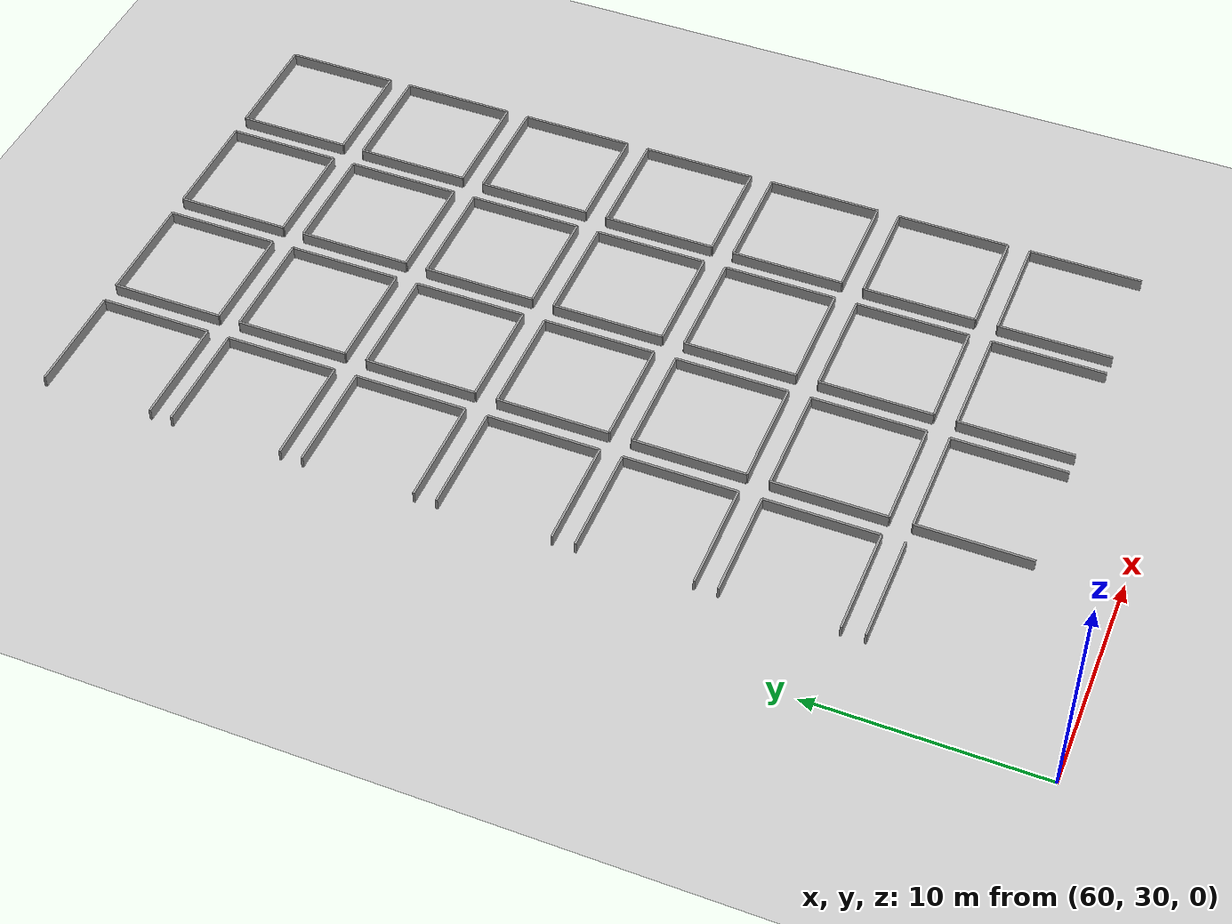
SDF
<sdf version="1.7">
 <world name="default">
  <include><uri>model://sun</uri></include>
  <model name="ground_plane">
   <static>true</static>
   <link name="link">
    <collision name="collision">
     <geometry><plane><normal>0 0 1</normal><size>100 100</size></plane></geometry>
    </collision>
    <visual name="visual">
     <geometry><plane><normal>0 0 1</normal><size>100 100</size></plane></geometry>
     <material>
      <script><uri>file://media/materials/scripts/gazebo.material</uri><name>Gazebo/Grey</name></script>
     </material>
    </visual>
   </link>
  </model>
  <model name="wall_101_north">
   <static>true</static>
   <pose>66 38.5 0 0 0 0</pose>
   <link name="link">
    <collision name="collision"><geometry><box><size>5 0.1 1</size></box></geometry></collision>
    <visual name="visual">
     <geometry><box><size>5 0.1 1</size></box></geometry>
     <material>
      <script><uri>file://media/materials/scripts/gazebo.material</uri><name>Gazebo/Grey</name></script>
     </material>
    </visual>
   </link>
  </model>
  <model name="wall_102_north">
   <static>true</static>
   <pose>72 38.5 0 0 0 0</pose>
   <link name="link">
    <collision name="collision"><geometry><box><size>5 0.1 1</size></box></geometry></collision>
    <visual name="visual">
     <geometry><box><size>5 0.1 1</size></box></geometry>
     <material>
      <script><uri>file://media/materials/scripts/gazebo.material</uri><name>Gazebo/Grey</name></script>
     </material>
    </visual>
   </link>
  </model>
  <model name="wall_102_east">
   <static>true</static>
   <pose>74.5 36 0 0 0 1.5707</pose>
   <link name="link">
    <collision name="collision"><geometry><box><size>5 0.1 1</size></box></geometry></collision>
    <visual name="visual">
     <geometry><box><size>5 0.1 1</size></box></geometry>
     <material>
      <script><uri>file://media/materials/scripts/gazebo.material</uri><name>Gazebo/Grey</name></script>
     </material>
    </visual>
   </link>
  </model>
  <model name="wall_102_west">
   <static>true</static>
   <pose>69.5 36 0 0 0 1.5707</pose>
   <link name="link">
    <collision name="collision"><geometry><box><size>5 0.1 1</size></box></geometry></collision>
    <visual name="visual">
     <geometry><box><size>5 0.1 1</size></box></geometry>
     <material>
      <script><uri>file://media/materials/scripts/gazebo.material</uri><name>Gazebo/Grey</name></script>
     </material>
    </visual>
   </link>
  </model>
  <model name="wall_103_north">
   <static>true</static>
   <pose>78 38.5 0 0 0 0</pose>
   <link name="link">
    <collision name="collision"><geometry><box><size>5 0.1 1</size></box></geometry></collision>
    <visual name="visual">
     <geometry><box><size>5 0.1 1</size></box></geometry>
     <material>
      <script><uri>file://media/materials/scripts/gazebo.material</uri><name>Gazebo/Grey</name></script>
     </material>
    </visual>
   </link>
  </model>
  <model name="wall_103_east">
   <static>true</static>
   <pose>80.5 36 0 0 0 1.5707</pose>
   <link name="link">
    <collision name="collision"><geometry><box><size>5 0.1 1</size></box></geometry></collision>
    <visual name="visual">
     <geometry><box><size>5 0.1 1</size></box></geometry>
     <material>
      <script><uri>file://media/materials/scripts/gazebo.material</uri><name>Gazebo/Grey</name></script>
     </material>
    </visual>
   </link>
  </model>
  <model name="wall_103_west">
   <static>true</static>
   <pose>75.5 36 0 0 0 1.5707</pose>
   <link name="link">
    <collision name="collision"><geometry><box><size>5 0.1 1</size></box></geometry></collision>
    <visual name="visual">
     <geometry><box><size>5 0.1 1</size></box></geometry>
     <material>
      <script><uri>file://media/materials/scripts/gazebo.material</uri><name>Gazebo/Grey</name></script>
     </material>
    </visual>
   </link>
  </model>
  <model name="wall_104_north">
   <static>true</static>
   <pose>84 38.5 0 0 0 0</pose>
   <link name="link">
    <collision name="collision"><geometry><box><size>5 0.1 1</size></box></geometry></collision>
    <visual name="visual">
     <geometry><box><size>5 0.1 1</size></box></geometry>
     <material>
      <script><uri>file://media/materials/scripts/gazebo.material</uri><name>Gazebo/Grey</name></script>
     </material>
    </visual>
   </link>
  </model>
  <model name="wall_104_east">
   <static>true</static>
   <pose>86.5 36 0 0 0 1.5707</pose>
   <link name="link">
    <collision name="collision"><geometry><box><size>5 0.1 1</size></box></geometry></collision>
    <visual name="visual">
     <geometry><box><size>5 0.1 1</size></box></geometry>
     <material>
      <script><uri>file://media/materials/scripts/gazebo.material</uri><name>Gazebo/Grey</name></script>
     </material>
    </visual>
   </link>
  </model>
  <model name="wall_104_west">
   <static>true</static>
   <pose>81.5 36 0 0 0 1.5707</pose>
   <link name="link">
    <collision name="collision"><geometry><box><size>5 0.1 1</size></box></geometry></collision>
    <visual name="visual">
     <geometry><box><size>5 0.1 1</size></box></geometry>
     <material>
      <script><uri>file://media/materials/scripts/gazebo.material</uri><name>Gazebo/Grey</name></script>
     </material>
    </visual>
   </link>
  </model>
  <model name="wall_116_north">
   <static>true</static>
   <pose>66 44.5 0 0 0 0</pose>
   <link name="link">
    <collision name="collision"><geometry><box><size>5 0.1 1</size></box></geometry></collision>
    <visual name="visual">
     <geometry><box><size>5 0.1 1</size></box></geometry>
     <material>
      <script><uri>file://media/materials/scripts/gazebo.material</uri><name>Gazebo/Grey</name></script>
     </material>
    </visual>
   </link>
  </model>
  <model name="wall_116_south">
   <static>true</static>
   <pose>66 39.5 0 0 0 0</pose>
   <link name="link">
    <collision name="collision"><geometry><box><size>5 0.1 1</size></box></geometry></collision>
    <visual name="visual">
     <geometry><box><size>5 0.1 1</size></box></geometry>
     <material>
      <script><uri>file://media/materials/scripts/gazebo.material</uri><name>Gazebo/Grey</name></script>
     </material>
    </visual>
   </link>
  </model>
  <model name="wall_116_east">
   <static>true</static>
   <pose>68.5 42 0 0 0 1.5707</pose>
   <link name="link">
    <collision name="collision"><geometry><box><size>5 0.1 1</size></box></geometry></collision>
    <visual name="visual">
     <geometry><box><size>5 0.1 1</size></box></geometry>
     <material>
      <script><uri>file://media/materials/scripts/gazebo.material</uri><name>Gazebo/Grey</name></script>
     </material>
    </visual>
   </link>
  </model>
  <model name="wall_117_north">
   <static>true</static>
   <pose>72 44.5 0 0 0 0</pose>
   <link name="link">
    <collision name="collision"><geometry><box><size>5 0.1 1</size></box></geometry></collision>
    <visual name="visual">
     <geometry><box><size>5 0.1 1</size></box></geometry>
     <material>
      <script><uri>file://media/materials/scripts/gazebo.material</uri><name>Gazebo/Grey</name></script>
     </material>
    </visual>
   </link>
  </model>
  <model name="wall_117_south">
   <static>true</static>
   <pose>72 39.5 0 0 0 0</pose>
   <link name="link">
    <collision name="collision"><geometry><box><size>5 0.1 1</size></box></geometry></collision>
    <visual name="visual">
     <geometry><box><size>5 0.1 1</size></box></geometry>
     <material>
      <script><uri>file://media/materials/scripts/gazebo.material</uri><name>Gazebo/Grey</name></script>
     </material>
    </visual>
   </link>
  </model>
  <model name="wall_117_east">
   <static>true</static>
   <pose>74.5 42 0 0 0 1.5707</pose>
   <link name="link">
    <collision name="collision"><geometry><box><size>5 0.1 1</size></box></geometry></collision>
    <visual name="visual">
     <geometry><box><size>5 0.1 1</size></box></geometry>
     <material>
      <script><uri>file://media/materials/scripts/gazebo.material</uri><name>Gazebo/Grey</name></script>
     </material>
    </visual>
   </link>
  </model>
  <model name="wall_117_west">
   <static>true</static>
   <pose>69.5 42 0 0 0 1.5707</pose>
   <link name="link">
    <collision name="collision"><geometry><box><size>5 0.1 1</size></box></geometry></collision>
    <visual name="visual">
     <geometry><box><size>5 0.1 1</size></box></geometry>
     <material>
      <script><uri>file://media/materials/scripts/gazebo.material</uri><name>Gazebo/Grey</name></script>
     </material>
    </visual>
   </link>
  </model>
  <model name="wall_118_north">
   <static>true</static>
   <pose>78 44.5 0 0 0 0</pose>
   <link name="link">
    <collision name="collision"><geometry><box><size>5 0.1 1</size></box></geometry></collision>
    <visual name="visual">
     <geometry><box><size>5 0.1 1</size></box></geometry>
     <material>
      <script><uri>file://media/materials/scripts/gazebo.material</uri><name>Gazebo/Grey</name></script>
     </material>
    </visual>
   </link>
  </model>
  <model name="wall_118_south">
   <static>true</static>
   <pose>78 39.5 0 0 0 0</pose>
   <link name="link">
    <collision name="collision"><geometry><box><size>5 0.1 1</size></box></geometry></collision>
    <visual name="visual">
     <geometry><box><size>5 0.1 1</size></box></geometry>
     <material>
      <script><uri>file://media/materials/scripts/gazebo.material</uri><name>Gazebo/Grey</name></script>
     </material>
    </visual>
   </link>
  </model>
  <model name="wall_118_east">
   <static>true</static>
   <pose>80.5 42 0 0 0 1.5707</pose>
   <link name="link">
    <collision name="collision"><geometry><box><size>5 0.1 1</size></box></geometry></collision>
    <visual name="visual">
     <geometry><box><size>5 0.1 1</size></box></geometry>
     <material>
      <script><uri>file://media/materials/scripts/gazebo.material</uri><name>Gazebo/Grey</name></script>
     </material>
    </visual>
   </link>
  </model>
  <model name="wall_118_west">
   <static>true</static>
   <pose>75.5 42 0 0 0 1.5707</pose>
   <link name="link">
    <collision name="collision"><geometry><box><size>5 0.1 1</size></box></geometry></collision>
    <visual name="visual">
     <geometry><box><size>5 0.1 1</size></box></geometry>
     <material>
      <script><uri>file://media/materials/scripts/gazebo.material</uri><name>Gazebo/Grey</name></script>
     </material>
    </visual>
   </link>
  </model>
  <model name="wall_119_north">
   <static>true</static>
   <pose>84 44.5 0 0 0 0</pose>
   <link name="link">
    <collision name="collision"><geometry><box><size>5 0.1 1</size></box></geometry></collision>
    <visual name="visual">
     <geometry><box><size>5 0.1 1</size></box></geometry>
     <material>
      <script><uri>file://media/materials/scripts/gazebo.material</uri><name>Gazebo/Grey</name></script>
     </material>
    </visual>
   </link>
  </model>
  <model name="wall_119_south">
   <static>true</static>
   <pose>84 39.5 0 0 0 0</pose>
   <link name="link">
    <collision name="collision"><geometry><box><size>5 0.1 1</size></box></geometry></collision>
    <visual name="visual">
     <geometry><box><size>5 0.1 1</size></box></geometry>
     <material>
      <script><uri>file://media/materials/scripts/gazebo.material</uri><name>Gazebo/Grey</name></script>
     </material>
    </visual>
   </link>
  </model>
  <model name="wall_119_east">
   <static>true</static>
   <pose>86.5 42 0 0 0 1.5707</pose>
   <link name="link">
    <collision name="collision"><geometry><box><size>5 0.1 1</size></box></geometry></collision>
    <visual name="visual">
     <geometry><box><size>5 0.1 1</size></box></geometry>
     <material>
      <script><uri>file://media/materials/scripts/gazebo.material</uri><name>Gazebo/Grey</name></script>
     </material>
    </visual>
   </link>
  </model>
  <model name="wall_119_west">
   <static>true</static>
   <pose>81.5 42 0 0 0 1.5707</pose>
   <link name="link">
    <collision name="collision"><geometry><box><size>5 0.1 1</size></box></geometry></collision>
    <visual name="visual">
     <geometry><box><size>5 0.1 1</size></box></geometry>
     <material>
      <script><uri>file://media/materials/scripts/gazebo.material</uri><name>Gazebo/Grey</name></script>
     </material>
    </visual>
   </link>
  </model>
  <model name="wall_131_north">
   <static>true</static>
   <pose>66 50.5 0 0 0 0</pose>
   <link name="link">
    <collision name="collision"><geometry><box><size>5 0.1 1</size></box></geometry></collision>
    <visual name="visual">
     <geometry><box><size>5 0.1 1</size></box></geometry>
     <material>
      <script><uri>file://media/materials/scripts/gazebo.material</uri><name>Gazebo/Grey</name></script>
     </material>
    </visual>
   </link>
  </model>
  <model name="wall_131_south">
   <static>true</static>
   <pose>66 45.5 0 0 0 0</pose>
   <link name="link">
    <collision name="collision"><geometry><box><size>5 0.1 1</size></box></geometry></collision>
    <visual name="visual">
     <geometry><box><size>5 0.1 1</size></box></geometry>
     <material>
      <script><uri>file://media/materials/scripts/gazebo.material</uri><name>Gazebo/Grey</name></script>
     </material>
    </visual>
   </link>
  </model>
  <model name="wall_131_east">
   <static>true</static>
   <pose>68.5 48 0 0 0 1.5707</pose>
   <link name="link">
    <collision name="collision"><geometry><box><size>5 0.1 1</size></box></geometry></collision>
    <visual name="visual">
     <geometry><box><size>5 0.1 1</size></box></geometry>
     <material>
      <script><uri>file://media/materials/scripts/gazebo.material</uri><name>Gazebo/Grey</name></script>
     </material>
    </visual>
   </link>
  </model>
  <model name="wall_132_north">
   <static>true</static>
   <pose>72 50.5 0 0 0 0</pose>
   <link name="link">
    <collision name="collision"><geometry><box><size>5 0.1 1</size></box></geometry></collision>
    <visual name="visual">
     <geometry><box><size>5 0.1 1</size></box></geometry>
     <material>
      <script><uri>file://media/materials/scripts/gazebo.material</uri><name>Gazebo/Grey</name></script>
     </material>
    </visual>
   </link>
  </model>
  <model name="wall_132_south">
   <static>true</static>
   <pose>72 45.5 0 0 0 0</pose>
   <link name="link">
    <collision name="collision"><geometry><box><size>5 0.1 1</size></box></geometry></collision>
    <visual name="visual">
     <geometry><box><size>5 0.1 1</size></box></geometry>
     <material>
      <script><uri>file://media/materials/scripts/gazebo.material</uri><name>Gazebo/Grey</name></script>
     </material>
    </visual>
   </link>
  </model>
  <model name="wall_132_east">
   <static>true</static>
   <pose>74.5 48 0 0 0 1.5707</pose>
   <link name="link">
    <collision name="collision"><geometry><box><size>5 0.1 1</size></box></geometry></collision>
    <visual name="visual">
     <geometry><box><size>5 0.1 1</size></box></geometry>
     <material>
      <script><uri>file://media/materials/scripts/gazebo.material</uri><name>Gazebo/Grey</name></script>
     </material>
    </visual>
   </link>
  </model>
  <model name="wall_132_west">
   <static>true</static>
   <pose>69.5 48 0 0 0 1.5707</pose>
   <link name="link">
    <collision name="collision"><geometry><box><size>5 0.1 1</size></box></geometry></collision>
    <visual name="visual">
     <geometry><box><size>5 0.1 1</size></box></geometry>
     <material>
      <script><uri>file://media/materials/scripts/gazebo.material</uri><name>Gazebo/Grey</name></script>
     </material>
    </visual>
   </link>
  </model>
  <model name="wall_133_north">
   <static>true</static>
   <pose>78 50.5 0 0 0 0</pose>
   <link name="link">
    <collision name="collision"><geometry><box><size>5 0.1 1</size></box></geometry></collision>
    <visual name="visual">
     <geometry><box><size>5 0.1 1</size></box></geometry>
     <material>
      <script><uri>file://media/materials/scripts/gazebo.material</uri><name>Gazebo/Grey</name></script>
     </material>
    </visual>
   </link>
  </model>
  <model name="wall_133_south">
   <static>true</static>
   <pose>78 45.5 0 0 0 0</pose>
   <link name="link">
    <collision name="collision"><geometry><box><size>5 0.1 1</size></box></geometry></collision>
    <visual name="visual">
     <geometry><box><size>5 0.1 1</size></box></geometry>
     <material>
      <script><uri>file://media/materials/scripts/gazebo.material</uri><name>Gazebo/Grey</name></script>
     </material>
    </visual>
   </link>
  </model>
  <model name="wall_133_east">
   <static>true</static>
   <pose>80.5 48 0 0 0 1.5707</pose>
   <link name="link">
    <collision name="collision"><geometry><box><size>5 0.1 1</size></box></geometry></collision>
    <visual name="visual">
     <geometry><box><size>5 0.1 1</size></box></geometry>
     <material>
      <script><uri>file://media/materials/scripts/gazebo.material</uri><name>Gazebo/Grey</name></script>
     </material>
    </visual>
   </link>
  </model>
  <model name="wall_133_west">
   <static>true</static>
   <pose>75.5 48 0 0 0 1.5707</pose>
   <link name="link">
    <collision name="collision"><geometry><box><size>5 0.1 1</size></box></geometry></collision>
    <visual name="visual">
     <geometry><box><size>5 0.1 1</size></box></geometry>
     <material>
      <script><uri>file://media/materials/scripts/gazebo.material</uri><name>Gazebo/Grey</name></script>
     </material>
    </visual>
   </link>
  </model>
  <model name="wall_134_north">
   <static>true</static>
   <pose>84 50.5 0 0 0 0</pose>
   <link name="link">
    <collision name="collision"><geometry><box><size>5 0.1 1</size></box></geometry></collision>
    <visual name="visual">
     <geometry><box><size>5 0.1 1</size></box></geometry>
     <material>
      <script><uri>file://media/materials/scripts/gazebo.material</uri><name>Gazebo/Grey</name></script>
     </material>
    </visual>
   </link>
  </model>
  <model name="wall_134_south">
   <static>true</static>
   <pose>84 45.5 0 0 0 0</pose>
   <link name="link">
    <collision name="collision"><geometry><box><size>5 0.1 1</size></box></geometry></collision>
    <visual name="visual">
     <geometry><box><size>5 0.1 1</size></box></geometry>
     <material>
      <script><uri>file://media/materials/scripts/gazebo.material</uri><name>Gazebo/Grey</name></script>
     </material>
    </visual>
   </link>
  </model>
  <model name="wall_134_east">
   <static>true</static>
   <pose>86.5 48 0 0 0 1.5707</pose>
   <link name="link">
    <collision name="collision"><geometry><box><size>5 0.1 1</size></box></geometry></collision>
    <visual name="visual">
     <geometry><box><size>5 0.1 1</size></box></geometry>
     <material>
      <script><uri>file://media/materials/scripts/gazebo.material</uri><name>Gazebo/Grey</name></script>
     </material>
    </visual>
   </link>
  </model>
  <model name="wall_134_west">
   <static>true</static>
   <pose>81.5 48 0 0 0 1.5707</pose>
   <link name="link">
    <collision name="collision"><geometry><box><size>5 0.1 1</size></box></geometry></collision>
    <visual name="visual">
     <geometry><box><size>5 0.1 1</size></box></geometry>
     <material>
      <script><uri>file://media/materials/scripts/gazebo.material</uri><name>Gazebo/Grey</name></script>
     </material>
    </visual>
   </link>
  </model>
  <model name="wall_146_north">
   <static>true</static>
   <pose>66 56.5 0 0 0 0</pose>
   <link name="link">
    <collision name="collision"><geometry><box><size>5 0.1 1</size></box></geometry></collision>
    <visual name="visual">
     <geometry><box><size>5 0.1 1</size></box></geometry>
     <material>
      <script><uri>file://media/materials/scripts/gazebo.material</uri><name>Gazebo/Grey</name></script>
     </material>
    </visual>
   </link>
  </model>
  <model name="wall_146_south">
   <static>true</static>
   <pose>66 51.5 0 0 0 0</pose>
   <link name="link">
    <collision name="collision"><geometry><box><size>5 0.1 1</size></box></geometry></collision>
    <visual name="visual">
     <geometry><box><size>5 0.1 1</size></box></geometry>
     <material>
      <script><uri>file://media/materials/scripts/gazebo.material</uri><name>Gazebo/Grey</name></script>
     </material>
    </visual>
   </link>
  </model>
  <model name="wall_146_east">
   <static>true</static>
   <pose>68.5 54 0 0 0 1.5707</pose>
   <link name="link">
    <collision name="collision"><geometry><box><size>5 0.1 1</size></box></geometry></collision>
    <visual name="visual">
     <geometry><box><size>5 0.1 1</size></box></geometry>
     <material>
      <script><uri>file://media/materials/scripts/gazebo.material</uri><name>Gazebo/Grey</name></script>
     </material>
    </visual>
   </link>
  </model>
  <model name="wall_147_north">
   <static>true</static>
   <pose>72 56.5 0 0 0 0</pose>
   <link name="link">
    <collision name="collision"><geometry><box><size>5 0.1 1</size></box></geometry></collision>
    <visual name="visual">
     <geometry><box><size>5 0.1 1</size></box></geometry>
     <material>
      <script><uri>file://media/materials/scripts/gazebo.material</uri><name>Gazebo/Grey</name></script>
     </material>
    </visual>
   </link>
  </model>
  <model name="wall_147_south">
   <static>true</static>
   <pose>72 51.5 0 0 0 0</pose>
   <link name="link">
    <collision name="collision"><geometry><box><size>5 0.1 1</size></box></geometry></collision>
    <visual name="visual">
     <geometry><box><size>5 0.1 1</size></box></geometry>
     <material>
      <script><uri>file://media/materials/scripts/gazebo.material</uri><name>Gazebo/Grey</name></script>
     </material>
    </visual>
   </link>
  </model>
  <model name="wall_147_east">
   <static>true</static>
   <pose>74.5 54 0 0 0 1.5707</pose>
   <link name="link">
    <collision name="collision"><geometry><box><size>5 0.1 1</size></box></geometry></collision>
    <visual name="visual">
     <geometry><box><size>5 0.1 1</size></box></geometry>
     <material>
      <script><uri>file://media/materials/scripts/gazebo.material</uri><name>Gazebo/Grey</name></script>
     </material>
    </visual>
   </link>
  </model>
  <model name="wall_147_west">
   <static>true</static>
   <pose>69.5 54 0 0 0 1.5707</pose>
   <link name="link">
    <collision name="collision"><geometry><box><size>5 0.1 1</size></box></geometry></collision>
    <visual name="visual">
     <geometry><box><size>5 0.1 1</size></box></geometry>
     <material>
      <script><uri>file://media/materials/scripts/gazebo.material</uri><name>Gazebo/Grey</name></script>
     </material>
    </visual>
   </link>
  </model>
  <model name="wall_148_north">
   <static>true</static>
   <pose>78 56.5 0 0 0 0</pose>
   <link name="link">
    <collision name="collision"><geometry><box><size>5 0.1 1</size></box></geometry></collision>
    <visual name="visual">
     <geometry><box><size>5 0.1 1</size></box></geometry>
     <material>
      <script><uri>file://media/materials/scripts/gazebo.material</uri><name>Gazebo/Grey</name></script>
     </material>
    </visual>
   </link>
  </model>
  <model name="wall_148_south">
   <static>true</static>
   <pose>78 51.5 0 0 0 0</pose>
   <link name="link">
    <collision name="collision"><geometry><box><size>5 0.1 1</size></box></geometry></collision>
    <visual name="visual">
     <geometry><box><size>5 0.1 1</size></box></geometry>
     <material>
      <script><uri>file://media/materials/scripts/gazebo.material</uri><name>Gazebo/Grey</name></script>
     </material>
    </visual>
   </link>
  </model>
  <model name="wall_148_east">
   <static>true</static>
   <pose>80.5 54 0 0 0 1.5707</pose>
   <link name="link">
    <collision name="collision"><geometry><box><size>5 0.1 1</size></box></geometry></collision>
    <visual name="visual">
     <geometry><box><size>5 0.1 1</size></box></geometry>
     <material>
      <script><uri>file://media/materials/scripts/gazebo.material</uri><name>Gazebo/Grey</name></script>
     </material>
    </visual>
   </link>
  </model>
  <model name="wall_148_west">
   <static>true</static>
   <pose>75.5 54 0 0 0 1.5707</pose>
   <link name="link">
    <collision name="collision"><geometry><box><size>5 0.1 1</size></box></geometry></collision>
    <visual name="visual">
     <geometry><box><size>5 0.1 1</size></box></geometry>
     <material>
      <script><uri>file://media/materials/scripts/gazebo.material</uri><name>Gazebo/Grey</name></script>
     </material>
    </visual>
   </link>
  </model>
  <model name="wall_149_north">
   <static>true</static>
   <pose>84 56.5 0 0 0 0</pose>
   <link name="link">
    <collision name="collision"><geometry><box><size>5 0.1 1</size></box></geometry></collision>
    <visual name="visual">
     <geometry><box><size>5 0.1 1</size></box></geometry>
     <material>
      <script><uri>file://media/materials/scripts/gazebo.material</uri><name>Gazebo/Grey</name></script>
     </material>
    </visual>
   </link>
  </model>
  <model name="wall_149_south">
   <static>true</static>
   <pose>84 51.5 0 0 0 0</pose>
   <link name="link">
    <collision name="collision"><geometry><box><size>5 0.1 1</size></box></geometry></collision>
    <visual name="visual">
     <geometry><box><size>5 0.1 1</size></box></geometry>
     <material>
      <script><uri>file://media/materials/scripts/gazebo.material</uri><name>Gazebo/Grey</name></script>
     </material>
    </visual>
   </link>
  </model>
  <model name="wall_149_east">
   <static>true</static>
   <pose>86.5 54 0 0 0 1.5707</pose>
   <link name="link">
    <collision name="collision"><geometry><box><size>5 0.1 1</size></box></geometry></collision>
    <visual name="visual">
     <geometry><box><size>5 0.1 1</size></box></geometry>
     <material>
      <script><uri>file://media/materials/scripts/gazebo.material</uri><name>Gazebo/Grey</name></script>
     </material>
    </visual>
   </link>
  </model>
  <model name="wall_149_west">
   <static>true</static>
   <pose>81.5 54 0 0 0 1.5707</pose>
   <link name="link">
    <collision name="collision"><geometry><box><size>5 0.1 1</size></box></geometry></collision>
    <visual name="visual">
     <geometry><box><size>5 0.1 1</size></box></geometry>
     <material>
      <script><uri>file://media/materials/scripts/gazebo.material</uri><name>Gazebo/Grey</name></script>
     </material>
    </visual>
   </link>
  </model>
  <model name="wall_161_north">
   <static>true</static>
   <pose>66 62.5 0 0 0 0</pose>
   <link name="link">
    <collision name="collision"><geometry><box><size>5 0.1 1</size></box></geometry></collision>
    <visual name="visual">
     <geometry><box><size>5 0.1 1</size></box></geometry>
     <material>
      <script><uri>file://media/materials/scripts/gazebo.material</uri><name>Gazebo/Grey</name></script>
     </material>
    </visual>
   </link>
  </model>
  <model name="wall_161_south">
   <static>true</static>
   <pose>66 57.5 0 0 0 0</pose>
   <link name="link">
    <collision name="collision"><geometry><box><size>5 0.1 1</size></box></geometry></collision>
    <visual name="visual">
     <geometry><box><size>5 0.1 1</size></box></geometry>
     <material>
      <script><uri>file://media/materials/scripts/gazebo.material</uri><name>Gazebo/Grey</name></script>
     </material>
    </visual>
   </link>
  </model>
  <model name="wall_161_east">
   <static>true</static>
   <pose>68.5 60 0 0 0 1.5707</pose>
   <link name="link">
    <collision name="collision"><geometry><box><size>5 0.1 1</size></box></geometry></collision>
    <visual name="visual">
     <geometry><box><size>5 0.1 1</size></box></geometry>
     <material>
      <script><uri>file://media/materials/scripts/gazebo.material</uri><name>Gazebo/Grey</name></script>
     </material>
    </visual>
   </link>
  </model>
  <model name="wall_162_north">
   <static>true</static>
   <pose>72 62.5 0 0 0 0</pose>
   <link name="link">
    <collision name="collision"><geometry><box><size>5 0.1 1</size></box></geometry></collision>
    <visual name="visual">
     <geometry><box><size>5 0.1 1</size></box></geometry>
     <material>
      <script><uri>file://media/materials/scripts/gazebo.material</uri><name>Gazebo/Grey</name></script>
     </material>
    </visual>
   </link>
  </model>
  <model name="wall_162_south">
   <static>true</static>
   <pose>72 57.5 0 0 0 0</pose>
   <link name="link">
    <collision name="collision"><geometry><box><size>5 0.1 1</size></box></geometry></collision>
    <visual name="visual">
     <geometry><box><size>5 0.1 1</size></box></geometry>
     <material>
      <script><uri>file://media/materials/scripts/gazebo.material</uri><name>Gazebo/Grey</name></script>
     </material>
    </visual>
   </link>
  </model>
  <model name="wall_162_east">
   <static>true</static>
   <pose>74.5 60 0 0 0 1.5707</pose>
   <link name="link">
    <collision name="collision"><geometry><box><size>5 0.1 1</size></box></geometry></collision>
    <visual name="visual">
     <geometry><box><size>5 0.1 1</size></box></geometry>
     <material>
      <script><uri>file://media/materials/scripts/gazebo.material</uri><name>Gazebo/Grey</name></script>
     </material>
    </visual>
   </link>
  </model>
  <model name="wall_162_west">
   <static>true</static>
   <pose>69.5 60 0 0 0 1.5707</pose>
   <link name="link">
    <collision name="collision"><geometry><box><size>5 0.1 1</size></box></geometry></collision>
    <visual name="visual">
     <geometry><box><size>5 0.1 1</size></box></geometry>
     <material>
      <script><uri>file://media/materials/scripts/gazebo.material</uri><name>Gazebo/Grey</name></script>
     </material>
    </visual>
   </link>
  </model>
  <model name="wall_163_north">
   <static>true</static>
   <pose>78 62.5 0 0 0 0</pose>
   <link name="link">
    <collision name="collision"><geometry><box><size>5 0.1 1</size></box></geometry></collision>
    <visual name="visual">
     <geometry><box><size>5 0.1 1</size></box></geometry>
     <material>
      <script><uri>file://media/materials/scripts/gazebo.material</uri><name>Gazebo/Grey</name></script>
     </material>
    </visual>
   </link>
  </model>
  <model name="wall_163_south">
   <static>true</static>
   <pose>78 57.5 0 0 0 0</pose>
   <link name="link">
    <collision name="collision"><geometry><box><size>5 0.1 1</size></box></geometry></collision>
    <visual name="visual">
     <geometry><box><size>5 0.1 1</size></box></geometry>
     <material>
      <script><uri>file://media/materials/scripts/gazebo.material</uri><name>Gazebo/Grey</name></script>
     </material>
    </visual>
   </link>
  </model>
  <model name="wall_163_east">
   <static>true</static>
   <pose>80.5 60 0 0 0 1.5707</pose>
   <link name="link">
    <collision name="collision"><geometry><box><size>5 0.1 1</size></box></geometry></collision>
    <visual name="visual">
     <geometry><box><size>5 0.1 1</size></box></geometry>
     <material>
      <script><uri>file://media/materials/scripts/gazebo.material</uri><name>Gazebo/Grey</name></script>
     </material>
    </visual>
   </link>
  </model>
  <model name="wall_163_west">
   <static>true</static>
   <pose>75.5 60 0 0 0 1.5707</pose>
   <link name="link">
    <collision name="collision"><geometry><box><size>5 0.1 1</size></box></geometry></collision>
    <visual name="visual">
     <geometry><box><size>5 0.1 1</size></box></geometry>
     <material>
      <script><uri>file://media/materials/scripts/gazebo.material</uri><name>Gazebo/Grey</name></script>
     </material>
    </visual>
   </link>
  </model>
  <model name="wall_164_north">
   <static>true</static>
   <pose>84 62.5 0 0 0 0</pose>
   <link name="link">
    <collision name="collision"><geometry><box><size>5 0.1 1</size></box></geometry></collision>
    <visual name="visual">
     <geometry><box><size>5 0.1 1</size></box></geometry>
     <material>
      <script><uri>file://media/materials/scripts/gazebo.material</uri><name>Gazebo/Grey</name></script>
     </material>
    </visual>
   </link>
  </model>
  <model name="wall_164_south">
   <static>true</static>
   <pose>84 57.5 0 0 0 0</pose>
   <link name="link">
    <collision name="collision"><geometry><box><size>5 0.1 1</size></box></geometry></collision>
    <visual name="visual">
     <geometry><box><size>5 0.1 1</size></box></geometry>
     <material>
      <script><uri>file://media/materials/scripts/gazebo.material</uri><name>Gazebo/Grey</name></script>
     </material>
    </visual>
   </link>
  </model>
  <model name="wall_164_east">
   <static>true</static>
   <pose>86.5 60 0 0 0 1.5707</pose>
   <link name="link">
    <collision name="collision"><geometry><box><size>5 0.1 1</size></box></geometry></collision>
    <visual name="visual">
     <geometry><box><size>5 0.1 1</size></box></geometry>
     <material>
      <script><uri>file://media/materials/scripts/gazebo.material</uri><name>Gazebo/Grey</name></script>
     </material>
    </visual>
   </link>
  </model>
  <model name="wall_164_west">
   <static>true</static>
   <pose>81.5 60 0 0 0 1.5707</pose>
   <link name="link">
    <collision name="collision"><geometry><box><size>5 0.1 1</size></box></geometry></collision>
    <visual name="visual">
     <geometry><box><size>5 0.1 1</size></box></geometry>
     <material>
      <script><uri>file://media/materials/scripts/gazebo.material</uri><name>Gazebo/Grey</name></script>
     </material>
    </visual>
   </link>
  </model>
  <model name="wall_176_north">
   <static>true</static>
   <pose>66 68.5 0 0 0 0</pose>
   <link name="link">
    <collision name="collision"><geometry><box><size>5 0.1 1</size></box></geometry></collision>
    <visual name="visual">
     <geometry><box><size>5 0.1 1</size></box></geometry>
     <material>
      <script><uri>file://media/materials/scripts/gazebo.material</uri><name>Gazebo/Grey</name></script>
     </material>
    </visual>
   </link>
  </model>
  <model name="wall_176_south">
   <static>true</static>
   <pose>66 63.5 0 0 0 0</pose>
   <link name="link">
    <collision name="collision"><geometry><box><size>5 0.1 1</size></box></geometry></collision>
    <visual name="visual">
     <geometry><box><size>5 0.1 1</size></box></geometry>
     <material>
      <script><uri>file://media/materials/scripts/gazebo.material</uri><name>Gazebo/Grey</name></script>
     </material>
    </visual>
   </link>
  </model>
  <model name="wall_176_east">
   <static>true</static>
   <pose>68.5 66 0 0 0 1.5707</pose>
   <link name="link">
    <collision name="collision"><geometry><box><size>5 0.1 1</size></box></geometry></collision>
    <visual name="visual">
     <geometry><box><size>5 0.1 1</size></box></geometry>
     <material>
      <script><uri>file://media/materials/scripts/gazebo.material</uri><name>Gazebo/Grey</name></script>
     </material>
    </visual>
   </link>
  </model>
  <model name="wall_177_north">
   <static>true</static>
   <pose>72 68.5 0 0 0 0</pose>
   <link name="link">
    <collision name="collision"><geometry><box><size>5 0.1 1</size></box></geometry></collision>
    <visual name="visual">
     <geometry><box><size>5 0.1 1</size></box></geometry>
     <material>
      <script><uri>file://media/materials/scripts/gazebo.material</uri><name>Gazebo/Grey</name></script>
     </material>
    </visual>
   </link>
  </model>
  <model name="wall_177_south">
   <static>true</static>
   <pose>72 63.5 0 0 0 0</pose>
   <link name="link">
    <collision name="collision"><geometry><box><size>5 0.1 1</size></box></geometry></collision>
    <visual name="visual">
     <geometry><box><size>5 0.1 1</size></box></geometry>
     <material>
      <script><uri>file://media/materials/scripts/gazebo.material</uri><name>Gazebo/Grey</name></script>
     </material>
    </visual>
   </link>
  </model>
  <model name="wall_177_east">
   <static>true</static>
   <pose>74.5 66 0 0 0 1.5707</pose>
   <link name="link">
    <collision name="collision"><geometry><box><size>5 0.1 1</size></box></geometry></collision>
    <visual name="visual">
     <geometry><box><size>5 0.1 1</size></box></geometry>
     <material>
      <script><uri>file://media/materials/scripts/gazebo.material</uri><name>Gazebo/Grey</name></script>
     </material>
    </visual>
   </link>
  </model>
  <model name="wall_177_west">
   <static>true</static>
   <pose>69.5 66 0 0 0 1.5707</pose>
   <link name="link">
    <collision name="collision"><geometry><box><size>5 0.1 1</size></box></geometry></collision>
    <visual name="visual">
     <geometry><box><size>5 0.1 1</size></box></geometry>
     <material>
      <script><uri>file://media/materials/scripts/gazebo.material</uri><name>Gazebo/Grey</name></script>
     </material>
    </visual>
   </link>
  </model>
  <model name="wall_178_north">
   <static>true</static>
   <pose>78 68.5 0 0 0 0</pose>
   <link name="link">
    <collision name="collision"><geometry><box><size>5 0.1 1</size></box></geometry></collision>
    <visual name="visual">
     <geometry><box><size>5 0.1 1</size></box></geometry>
     <material>
      <script><uri>file://media/materials/scripts/gazebo.material</uri><name>Gazebo/Grey</name></script>
     </material>
    </visual>
   </link>
  </model>
  <model name="wall_178_south">
   <static>true</static>
   <pose>78 63.5 0 0 0 0</pose>
   <link name="link">
    <collision name="collision"><geometry><box><size>5 0.1 1</size></box></geometry></collision>
    <visual name="visual">
     <geometry><box><size>5 0.1 1</size></box></geometry>
     <material>
      <script><uri>file://media/materials/scripts/gazebo.material</uri><name>Gazebo/Grey</name></script>
     </material>
    </visual>
   </link>
  </model>
  <model name="wall_178_east">
   <static>true</static>
   <pose>80.5 66 0 0 0 1.5707</pose>
   <link name="link">
    <collision name="collision"><geometry><box><size>5 0.1 1</size></box></geometry></collision>
    <visual name="visual">
     <geometry><box><size>5 0.1 1</size></box></geometry>
     <material>
      <script><uri>file://media/materials/scripts/gazebo.material</uri><name>Gazebo/Grey</name></script>
     </material>
    </visual>
   </link>
  </model>
  <model name="wall_178_west">
   <static>true</static>
   <pose>75.5 66 0 0 0 1.5707</pose>
   <link name="link">
    <collision name="collision"><geometry><box><size>5 0.1 1</size></box></geometry></collision>
    <visual name="visual">
     <geometry><box><size>5 0.1 1</size></box></geometry>
     <material>
      <script><uri>file://media/materials/scripts/gazebo.material</uri><name>Gazebo/Grey</name></script>
     </material>
    </visual>
   </link>
  </model>
  <model name="wall_179_north">
   <static>true</static>
   <pose>84 68.5 0 0 0 0</pose>
   <link name="link">
    <collision name="collision"><geometry><box><size>5 0.1 1</size></box></geometry></collision>
    <visual name="visual">
     <geometry><box><size>5 0.1 1</size></box></geometry>
     <material>
      <script><uri>file://media/materials/scripts/gazebo.material</uri><name>Gazebo/Grey</name></script>
     </material>
    </visual>
   </link>
  </model>
  <model name="wall_179_south">
   <static>true</static>
   <pose>84 63.5 0 0 0 0</pose>
   <link name="link">
    <collision name="collision"><geometry><box><size>5 0.1 1</size></box></geometry></collision>
    <visual name="visual">
     <geometry><box><size>5 0.1 1</size></box></geometry>
     <material>
      <script><uri>file://media/materials/scripts/gazebo.material</uri><name>Gazebo/Grey</name></script>
     </material>
    </visual>
   </link>
  </model>
  <model name="wall_179_east">
   <static>true</static>
   <pose>86.5 66 0 0 0 1.5707</pose>
   <link name="link">
    <collision name="collision"><geometry><box><size>5 0.1 1</size></box></geometry></collision>
    <visual name="visual">
     <geometry><box><size>5 0.1 1</size></box></geometry>
     <material>
      <script><uri>file://media/materials/scripts/gazebo.material</uri><name>Gazebo/Grey</name></script>
     </material>
    </visual>
   </link>
  </model>
  <model name="wall_179_west">
   <static>true</static>
   <pose>81.5 66 0 0 0 1.5707</pose>
   <link name="link">
    <collision name="collision"><geometry><box><size>5 0.1 1</size></box></geometry></collision>
    <visual name="visual">
     <geometry><box><size>5 0.1 1</size></box></geometry>
     <material>
      <script><uri>file://media/materials/scripts/gazebo.material</uri><name>Gazebo/Grey</name></script>
     </material>
    </visual>
   </link>
  </model>
  <model name="wall_191_north">
   <static>true</static>
   <pose>66 74.5 0 0 0 0</pose>
   <link name="link">
    <collision name="collision"><geometry><box><size>5 0.1 1</size></box></geometry></collision>
    <visual name="visual">
     <geometry><box><size>5 0.1 1</size></box></geometry>
     <material>
      <script><uri>file://media/materials/scripts/gazebo.material</uri><name>Gazebo/Grey</name></script>
     </material>
    </visual>
   </link>
  </model>
  <model name="wall_191_south">
   <static>true</static>
   <pose>66 69.5 0 0 0 0</pose>
   <link name="link">
    <collision name="collision"><geometry><box><size>5 0.1 1</size></box></geometry></collision>
    <visual name="visual">
     <geometry><box><size>5 0.1 1</size></box></geometry>
     <material>
      <script><uri>file://media/materials/scripts/gazebo.material</uri><name>Gazebo/Grey</name></script>
     </material>
    </visual>
   </link>
  </model>
  <model name="wall_191_east">
   <static>true</static>
   <pose>68.5 72 0 0 0 1.5707</pose>
   <link name="link">
    <collision name="collision"><geometry><box><size>5 0.1 1</size></box></geometry></collision>
    <visual name="visual">
     <geometry><box><size>5 0.1 1</size></box></geometry>
     <material>
      <script><uri>file://media/materials/scripts/gazebo.material</uri><name>Gazebo/Grey</name></script>
     </material>
    </visual>
   </link>
  </model>
  <model name="wall_192_north">
   <static>true</static>
   <pose>72 74.5 0 0 0 0</pose>
   <link name="link">
    <collision name="collision"><geometry><box><size>5 0.1 1</size></box></geometry></collision>
    <visual name="visual">
     <geometry><box><size>5 0.1 1</size></box></geometry>
     <material>
      <script><uri>file://media/materials/scripts/gazebo.material</uri><name>Gazebo/Grey</name></script>
     </material>
    </visual>
   </link>
  </model>
  <model name="wall_192_south">
   <static>true</static>
   <pose>72 69.5 0 0 0 0</pose>
   <link name="link">
    <collision name="collision"><geometry><box><size>5 0.1 1</size></box></geometry></collision>
    <visual name="visual">
     <geometry><box><size>5 0.1 1</size></box></geometry>
     <material>
      <script><uri>file://media/materials/scripts/gazebo.material</uri><name>Gazebo/Grey</name></script>
     </material>
    </visual>
   </link>
  </model>
  <model name="wall_192_east">
   <static>true</static>
   <pose>74.5 72 0 0 0 1.5707</pose>
   <link name="link">
    <collision name="collision"><geometry><box><size>5 0.1 1</size></box></geometry></collision>
    <visual name="visual">
     <geometry><box><size>5 0.1 1</size></box></geometry>
     <material>
      <script><uri>file://media/materials/scripts/gazebo.material</uri><name>Gazebo/Grey</name></script>
     </material>
    </visual>
   </link>
  </model>
  <model name="wall_192_west">
   <static>true</static>
   <pose>69.5 72 0 0 0 1.5707</pose>
   <link name="link">
    <collision name="collision"><geometry><box><size>5 0.1 1</size></box></geometry></collision>
    <visual name="visual">
     <geometry><box><size>5 0.1 1</size></box></geometry>
     <material>
      <script><uri>file://media/materials/scripts/gazebo.material</uri><name>Gazebo/Grey</name></script>
     </material>
    </visual>
   </link>
  </model>
  <model name="wall_193_north">
   <static>true</static>
   <pose>78 74.5 0 0 0 0</pose>
   <link name="link">
    <collision name="collision"><geometry><box><size>5 0.1 1</size></box></geometry></collision>
    <visual name="visual">
     <geometry><box><size>5 0.1 1</size></box></geometry>
     <material>
      <script><uri>file://media/materials/scripts/gazebo.material</uri><name>Gazebo/Grey</name></script>
     </material>
    </visual>
   </link>
  </model>
  <model name="wall_193_south">
   <static>true</static>
   <pose>78 69.5 0 0 0 0</pose>
   <link name="link">
    <collision name="collision"><geometry><box><size>5 0.1 1</size></box></geometry></collision>
    <visual name="visual">
     <geometry><box><size>5 0.1 1</size></box></geometry>
     <material>
      <script><uri>file://media/materials/scripts/gazebo.material</uri><name>Gazebo/Grey</name></script>
     </material>
    </visual>
   </link>
  </model>
  <model name="wall_193_east">
   <static>true</static>
   <pose>80.5 72 0 0 0 1.5707</pose>
   <link name="link">
    <collision name="collision"><geometry><box><size>5 0.1 1</size></box></geometry></collision>
    <visual name="visual">
     <geometry><box><size>5 0.1 1</size></box></geometry>
     <material>
      <script><uri>file://media/materials/scripts/gazebo.material</uri><name>Gazebo/Grey</name></script>
     </material>
    </visual>
   </link>
  </model>
  <model name="wall_193_west">
   <static>true</static>
   <pose>75.5 72 0 0 0 1.5707</pose>
   <link name="link">
    <collision name="collision"><geometry><box><size>5 0.1 1</size></box></geometry></collision>
    <visual name="visual">
     <geometry><box><size>5 0.1 1</size></box></geometry>
     <material>
      <script><uri>file://media/materials/scripts/gazebo.material</uri><name>Gazebo/Grey</name></script>
     </material>
    </visual>
   </link>
  </model>
  <model name="wall_194_north">
   <static>true</static>
   <pose>84 74.5 0 0 0 0</pose>
   <link name="link">
    <collision name="collision"><geometry><box><size>5 0.1 1</size></box></geometry></collision>
    <visual name="visual">
     <geometry><box><size>5 0.1 1</size></box></geometry>
     <material>
      <script><uri>file://media/materials/scripts/gazebo.material</uri><name>Gazebo/Grey</name></script>
     </material>
    </visual>
   </link>
  </model>
  <model name="wall_194_south">
   <static>true</static>
   <pose>84 69.5 0 0 0 0</pose>
   <link name="link">
    <collision name="collision"><geometry><box><size>5 0.1 1</size></box></geometry></collision>
    <visual name="visual">
     <geometry><box><size>5 0.1 1</size></box></geometry>
     <material>
      <script><uri>file://media/materials/scripts/gazebo.material</uri><name>Gazebo/Grey</name></script>
     </material>
    </visual>
   </link>
  </model>
  <model name="wall_194_east">
   <static>true</static>
   <pose>86.5 72 0 0 0 1.5707</pose>
   <link name="link">
    <collision name="collision"><geometry><box><size>5 0.1 1</size></box></geometry></collision>
    <visual name="visual">
     <geometry><box><size>5 0.1 1</size></box></geometry>
     <material>
      <script><uri>file://media/materials/scripts/gazebo.material</uri><name>Gazebo/Grey</name></script>
     </material>
    </visual>
   </link>
  </model>
  <model name="wall_194_west">
   <static>true</static>
   <pose>81.5 72 0 0 0 1.5707</pose>
   <link name="link">
    <collision name="collision"><geometry><box><size>5 0.1 1</size></box></geometry></collision>
    <visual name="visual">
     <geometry><box><size>5 0.1 1</size></box></geometry>
     <material>
      <script><uri>file://media/materials/scripts/gazebo.material</uri><name>Gazebo/Grey</name></script>
     </material>
    </visual>
   </link>
  </model>
 </world>
</sdf>
